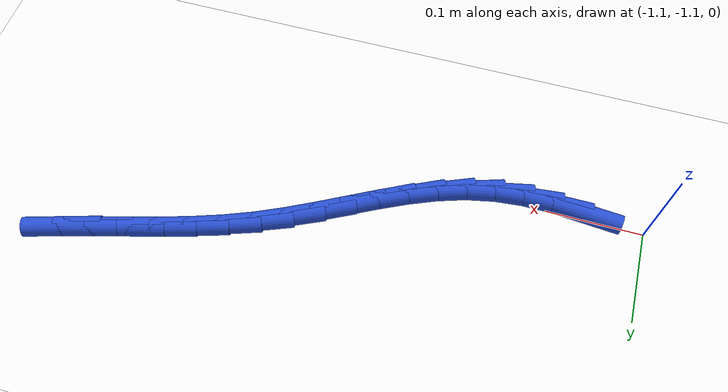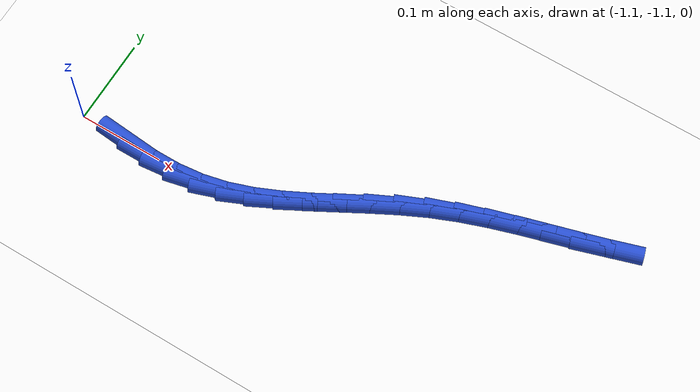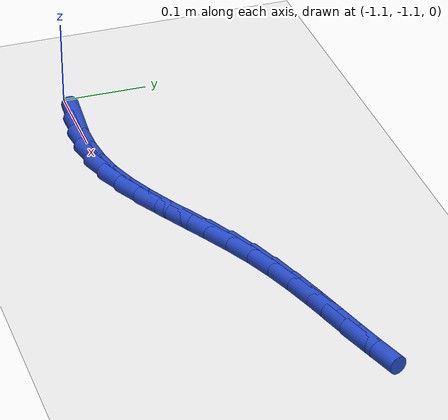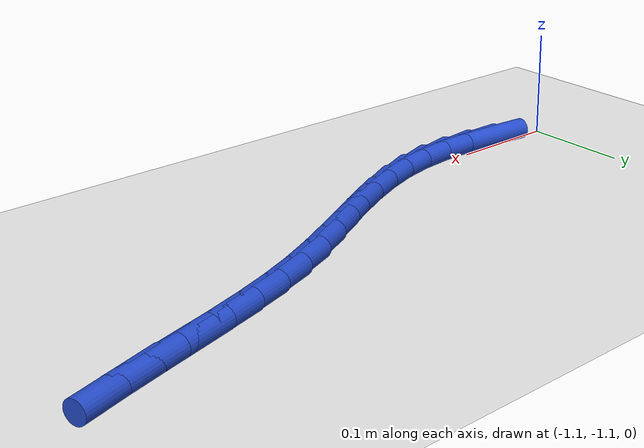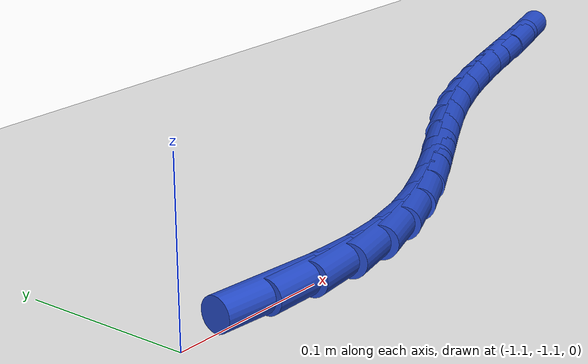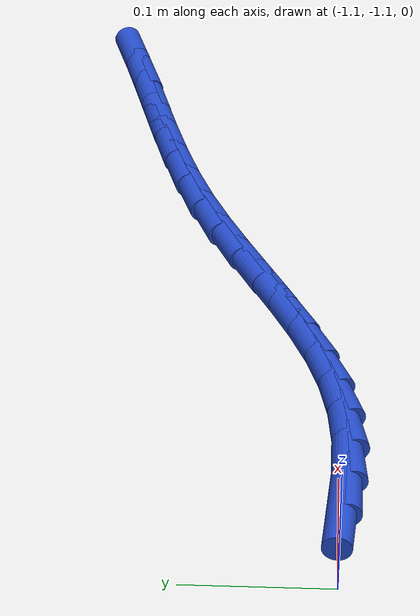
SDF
<sdf version="1.6">
 <world name="default">
  <model name="ground_plane">
   <static>1</static>
   <link name="link">
    <collision name="collision">
     <geometry><plane><normal>0 0 1</normal><size>100 100</size></plane></geometry>
     <surface><friction><ode><mu>100</mu><mu2>50</mu2></ode></friction></surface>
    </collision>
    <visual name="visual">
     <cast_shadows>0</cast_shadows>
     <geometry><plane><normal>0 0 1</normal><size>100 100</size></plane></geometry>
     <material>
      <script><uri>file://media/materials/scripts/gazebo.material</uri><name>Gazebo/WhiteGlow</name></script>
     </material>
    </visual>
   </link>
  </model>
  <model name="line">
   <link name="link_157">
    <pose>-1.0349460286790328 -1.102584840924968 0.01 0 1.57 -0.08578036476175196</pose>
    <collision name="collision">
     <geometry><cylinder><radius>0.01</radius><length>0.08</length></cylinder></geometry>
    </collision>
    <visual name="visual">
     <material>
      <script><name>Gazebo/Blue</name><uri>file://media/materials/scripts/gazebo.material</uri></script>
     </material>
     <geometry><cylinder><radius>0.01</radius><length>0.08</length></cylinder></geometry>
    </visual>
   </link>
   <link name="link_158">
    <pose>-1.0042554474763075 -1.105223966486596 0.01 0 1.57 0.002984334373197973</pose>
    <collision name="collision">
     <geometry><cylinder><radius>0.01</radius><length>0.08</length></cylinder></geometry>
    </collision>
    <visual name="visual">
     <material>
      <script><name>Gazebo/Blue</name><uri>file://media/materials/scripts/gazebo.material</uri></script>
     </material>
     <geometry><cylinder><radius>0.01</radius><length>0.08</length></cylinder></geometry>
    </visual>
   </link>
   <link name="link_159">
    <pose>-0.9739779294210734 -1.1051336079804766 0.01 0 1.57 0.10540048501555566</pose>
    <collision name="collision">
     <geometry><cylinder><radius>0.01</radius><length>0.08</length></cylinder></geometry>
    </collision>
    <visual name="visual">
     <material>
      <script><name>Gazebo/Blue</name><uri>file://media/materials/scripts/gazebo.material</uri></script>
     </material>
     <geometry><cylinder><radius>0.01</radius><length>0.08</length></cylinder></geometry>
    </visual>
   </link>
   <link name="link_160">
    <pose>-0.9442058335231451 -1.1019839424989712 0.01 0 1.57 0.22017236724437783</pose>
    <collision name="collision">
     <geometry><cylinder><radius>0.01</radius><length>0.08</length></cylinder></geometry>
    </collision>
    <visual name="visual">
     <material>
      <script><name>Gazebo/Blue</name><uri>file://media/materials/scripts/gazebo.material</uri></script>
     </material>
     <geometry><cylinder><radius>0.01</radius><length>0.08</length></cylinder></geometry>
    </visual>
   </link>
   <link name="link_161">
    <pose>-0.9150290583418945 -1.0954541681028125 0.01 0 1.57 0.3302718596934969</pose>
    <collision name="collision">
     <geometry><cylinder><radius>0.01</radius><length>0.08</length></cylinder></geometry>
    </collision>
    <visual name="visual">
     <material>
      <script><name>Gazebo/Blue</name><uri>file://media/materials/scripts/gazebo.material</uri></script>
     </material>
     <geometry><cylinder><radius>0.01</radius><length>0.08</length></cylinder></geometry>
    </visual>
   </link>
   <link name="link_162">
    <pose>-0.8864220276439376 -1.0856468583597678 0.01 0 1.57 0.4135239658485389</pose>
    <collision name="collision">
     <geometry><cylinder><radius>0.01</radius><length>0.08</length></cylinder></geometry>
    </collision>
    <visual name="visual">
     <material>
      <script><name>Gazebo/Blue</name><uri>file://media/materials/scripts/gazebo.material</uri></script>
     </material>
     <geometry><cylinder><radius>0.01</radius><length>0.08</length></cylinder></geometry>
    </visual>
   </link>
   <link name="link_163">
    <pose>-0.8581965620286521 -1.073260753297224 0.01 0 1.57 0.4693124769287361</pose>
    <collision name="collision">
     <geometry><cylinder><radius>0.01</radius><length>0.08</length></cylinder></geometry>
    </collision>
    <visual name="visual">
     <material>
      <script><name>Gazebo/Blue</name><uri>file://media/materials/scripts/gazebo.material</uri></script>
     </material>
     <geometry><cylinder><radius>0.01</radius><length>0.08</length></cylinder></geometry>
    </visual>
   </link>
   <link name="link_164">
    <pose>-0.8301522484772246 -1.0590394461454251 0.01 0 1.57 0.49949807612153974</pose>
    <collision name="collision">
     <geometry><cylinder><radius>0.01</radius><length>0.08</length></cylinder></geometry>
    </collision>
    <visual name="visual">
     <material>
      <script><name>Gazebo/Blue</name><uri>file://media/materials/scripts/gazebo.material</uri></script>
     </material>
     <geometry><cylinder><radius>0.01</radius><length>0.08</length></cylinder></geometry>
    </visual>
   </link>
   <link name="link_165">
    <pose>-0.802088673970844 -1.0437265301346144 0.01 0 1.57 0.5056929106945585</pose>
    <collision name="collision">
     <geometry><cylinder><radius>0.01</radius><length>0.08</length></cylinder></geometry>
    </collision>
    <visual name="visual">
     <material>
      <script><name>Gazebo/Blue</name><uri>file://media/materials/scripts/gazebo.material</uri></script>
     </material>
     <geometry><cylinder><radius>0.01</radius><length>0.08</length></cylinder></geometry>
    </visual>
   </link>
   <link name="link_166">
    <pose>-0.7738054254906974 -1.0280655984950364 0.01 0 1.57 0.48878778644599674</pose>
    <collision name="collision">
     <geometry><cylinder><radius>0.01</radius><length>0.08</length></cylinder></geometry>
    </collision>
    <visual name="visual">
     <material>
      <script><name>Gazebo/Blue</name><uri>file://media/materials/scripts/gazebo.material</uri></script>
     </material>
     <geometry><cylinder><radius>0.01</radius><length>0.08</length></cylinder></geometry>
    </visual>
   </link>
   <link name="link_167">
    <pose>-0.7451020900179721 -1.0128002444569344 0.01 0 1.57 0.44892540318770835</pose>
    <collision name="collision">
     <geometry><cylinder><radius>0.01</radius><length>0.08</length></cylinder></geometry>
    </collision>
    <visual name="visual">
     <material>
      <script><name>Gazebo/Blue</name><uri>file://media/materials/scripts/gazebo.material</uri></script>
     </material>
     <geometry><cylinder><radius>0.01</radius><length>0.08</length></cylinder></geometry>
    </visual>
   </link>
   <link name="link_168">
    <pose>-0.7157782545338555 -0.9986740612505525 0.01 0 1.57 0.39105527414699426</pose>
    <collision name="collision">
     <geometry><cylinder><radius>0.01</radius><length>0.08</length></cylinder></geometry>
    </collision>
    <visual name="visual">
     <material>
      <script><name>Gazebo/Blue</name><uri>file://media/materials/scripts/gazebo.material</uri></script>
     </material>
     <geometry><cylinder><radius>0.01</radius><length>0.08</length></cylinder></geometry>
    </visual>
   </link>
   <link name="link_169">
    <pose>-0.6856942028867048 -0.986270736757743 0.01 0 1.57 0.3402612035597964</pose>
    <collision name="collision">
     <geometry><cylinder><radius>0.01</radius><length>0.08</length></cylinder></geometry>
    </collision>
    <visual name="visual">
     <material>
      <script><name>Gazebo/Blue</name><uri>file://media/materials/scripts/gazebo.material</uri></script>
     </material>
     <geometry><cylinder><radius>0.01</radius><length>0.08</length></cylinder></geometry>
    </visual>
   </link>
   <link name="link_170">
    <pose>-0.6550021714645364 -0.9754048125313107 0.01 0 1.57 0.30401866614500195</pose>
    <collision name="collision">
     <geometry><cylinder><radius>0.01</radius><length>0.08</length></cylinder></geometry>
    </collision>
    <visual name="visual">
     <material>
      <script><name>Gazebo/Blue</name><uri>file://media/materials/scripts/gazebo.material</uri></script>
     </material>
     <geometry><cylinder><radius>0.01</radius><length>0.08</length></cylinder></geometry>
    </visual>
   </link>
   <link name="link_171">
    <pose>-0.6239420677298497 -0.9656598614701184 0.01 0 1.57 0.2821348732843965</pose>
    <collision name="collision">
     <geometry><cylinder><radius>0.01</radius><length>0.08</length></cylinder></geometry>
    </collision>
    <visual name="visual">
     <material>
      <script><name>Gazebo/Blue</name><uri>file://media/materials/scripts/gazebo.material</uri></script>
     </material>
     <geometry><cylinder><radius>0.01</radius><length>0.08</length></cylinder></geometry>
    </visual>
   </link>
   <link name="link_172">
    <pose>-0.5927538160790997 -0.9566194118606691 0.01 0 1.57 0.27453006055345947</pose>
    <collision name="collision">
     <geometry><cylinder><radius>0.01</radius><length>0.08</length></cylinder></geometry>
    </collision>
    <visual name="visual">
     <material>
      <script><name>Gazebo/Blue</name><uri>file://media/materials/scripts/gazebo.material</uri></script>
     </material>
     <geometry><cylinder><radius>0.01</radius><length>0.08</length></cylinder></geometry>
    </visual>
   </link>
   <link name="link_173">
    <pose>-0.561677340908742 -0.9478669919894656 0.01 0 1.57 0.28137686661694833</pose>
    <collision name="collision">
     <geometry><cylinder><radius>0.01</radius><length>0.08</length></cylinder></geometry>
    </collision>
    <visual name="visual">
     <material>
      <script><name>Gazebo/Blue</name><uri>file://media/materials/scripts/gazebo.material</uri></script>
     </material>
     <geometry><cylinder><radius>0.01</radius><length>0.08</length></cylinder></geometry>
    </visual>
   </link>
   <link name="link_174">
    <pose>-0.5309525666152324 -0.9389861301430118 0.01 0 1.57 0.3031619791767429</pose>
    <collision name="collision">
     <geometry><cylinder><radius>0.01</radius><length>0.08</length></cylinder></geometry>
    </collision>
    <visual name="visual">
     <material>
      <script><name>Gazebo/Blue</name><uri>file://media/materials/scripts/gazebo.material</uri></script>
     </material>
     <geometry><cylinder><radius>0.01</radius><length>0.08</length></cylinder></geometry>
    </visual>
   </link>
  </model>
 </world>
</sdf>
